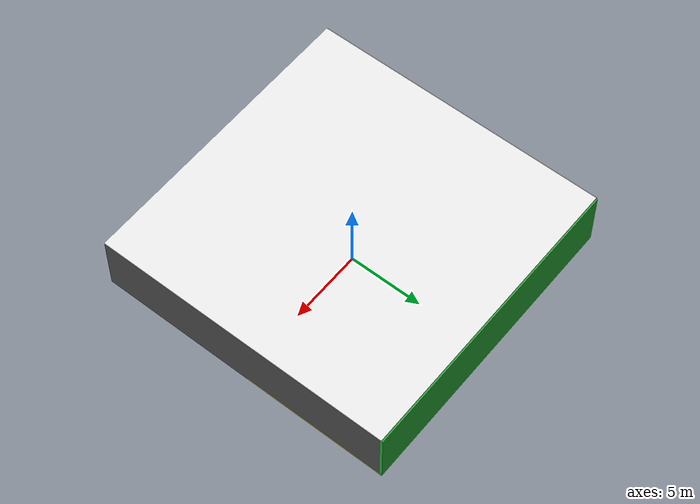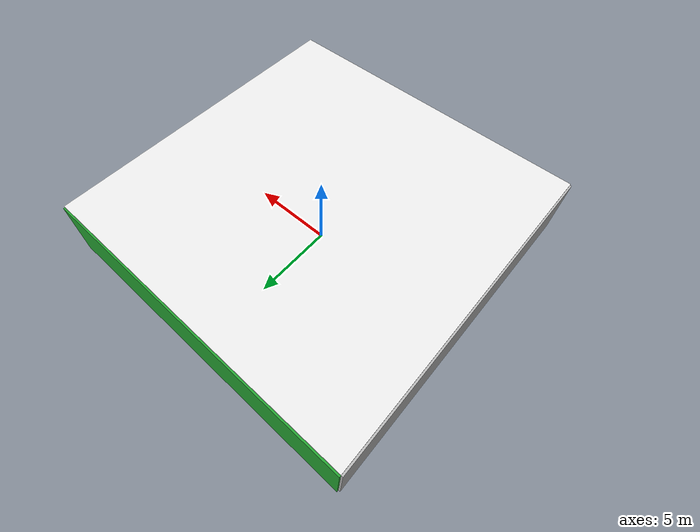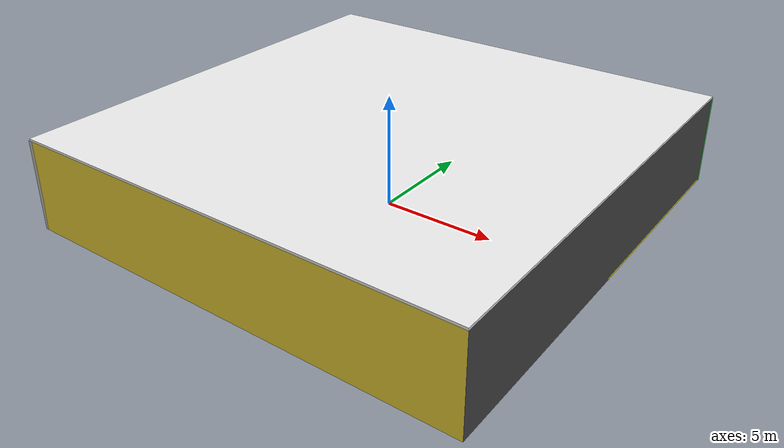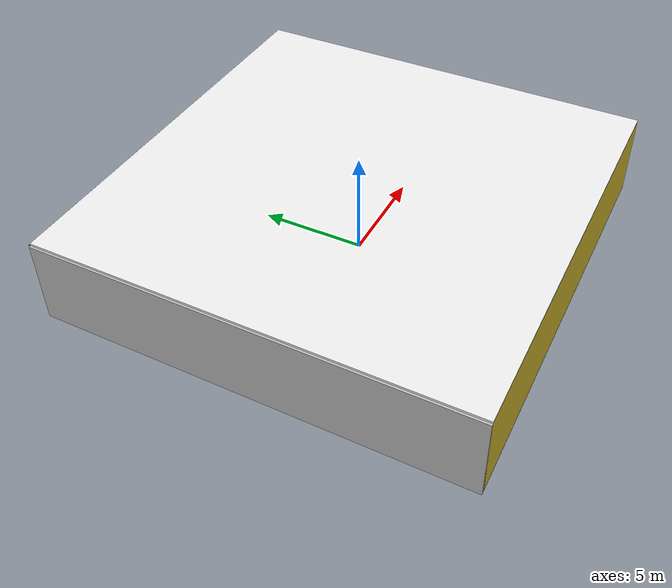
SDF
<sdf version="1.4">
 <world name="default">
  <physics type="ode">
   <max_step_size>0.001</max_step_size>
   <real_time_factor>1</real_time_factor>
   <real_time_update_rate>1000</real_time_update_rate>
   <gravity>0 0 -9.8</gravity>
  </physics>
  <scene><ambient>0.4 0.4 0.4 1</ambient><background>0.7 0.7 0.7 1</background><shadows>1</shadows></scene>
  <model name="Surrounding">
   <static>1</static>
   <link name="Ceiling">
    <collision name="Ceiling_Collision"><geometry><box><size>20 20 0.1</size></box></geometry></collision>
    <visual name="Ceiling_Visual">
     <geometry><box><size>20 20 0.1</size></box></geometry>
     <material>
      <script><uri>file://media/materials/scripts/gazebo.material</uri><name>Gazebo/White</name></script>
     </material>
    </visual>
    <pose>0 0 4.05 0 0 0</pose>
   </link>
   <link name="Wall_South">
    <collision name="Wall_South_Collision">
     <geometry><box><size>20 0 4</size></box></geometry>
     <pose>0 0 2 0 -0 0</pose>
    </collision>
    <visual name="Wall_South_Visual">
     <pose>0 0 2 0 -0 0</pose>
     <geometry><box><size>20 0 4</size></box></geometry>
     <material>
      <script><uri>file://media/materials/scripts/gazebo.material</uri><name>Gazebo/ZincYellow</name></script>
     </material>
    </visual>
    <velocity_decay><linear>0</linear><angular>0</angular></velocity_decay>
    <pose>0 -10 0 0 -0 0</pose>
   </link>
   <link name="Wall_East">
    <collision name="Wall_21_Collision">
     <geometry><box><size>20 0 4</size></box></geometry>
     <pose>0 0 2 0 -0 0</pose>
    </collision>
    <visual name="Wall_21_Visual">
     <pose>0 0 2 0 -0 0</pose>
     <geometry><box><size>20 0 4</size></box></geometry>
     <material>
      <script><uri>file://media/materials/scripts/gazebo.material</uri><name>Gazebo/DarkGrey</name></script>
     </material>
    </visual>
    <velocity_decay><linear>0</linear><angular>0</angular></velocity_decay>
    <pose>10 0 0 0 -0 1.5708</pose>
   </link>
   <link name="Wall_North">
    <collision name="Wall_22_Collision">
     <geometry><box><size>20 0.2 4</size></box></geometry>
     <pose>0 0 2 0 -0 0</pose>
    </collision>
    <visual name="Wall_22_Visual">
     <pose>0 0 2 0 -0 0</pose>
     <geometry><box><size>20 0.2 4</size></box></geometry>
     <material>
      <script><uri>file://media/materials/scripts/gazebo.material</uri><name>Gazebo/GreenGlow</name></script>
     </material>
    </visual>
    <velocity_decay><linear>0</linear><angular>0</angular></velocity_decay>
    <pose>0 10 0 0 -0 0</pose>
   </link>
   <link name="Wall_West">
    <collision name="Wall_23_Collision">
     <geometry><box><size>20 0.2 4</size></box></geometry>
     <pose>0 0 2 0 -0 0</pose>
    </collision>
    <visual name="Wall_23_Visual">
     <pose>0 0 2 0 -0 0</pose>
     <geometry><box><size>20 0.2 4</size></box></geometry>
     <material>
      <script><uri>file://media/materials/scripts/gazebo.material</uri><name>Gazebo/CloudySky</name></script>
     </material>
    </visual>
    <velocity_decay><linear>0</linear><angular>0</angular></velocity_decay>
    <pose>-10 0 0 0 0 -1.5708</pose>
   </link>
   <link name="Ground_link">
    <collision name="collision">
     <pose>0 0 .05 0 -0 0</pose>
     <geometry><box><size>20 20 0.1</size></box></geometry>
    </collision>
    <visual name="visual">
     <pose>0 0 .05 0 -0 0</pose>
     <geometry><box><size>20 20 0.1</size></box></geometry>
     <material>
      <script><uri>file://media/materials/scripts/gazebo.material</uri><name>Gazebo/Yellow</name></script>
     </material>
    </visual>
   </link>
   <static>1</static>
  </model>
  <spherical_coordinates>
   <surface_model>EARTH_WGS84</surface_model>
   <latitude_deg>0</latitude_deg>
   <longitude_deg>0</longitude_deg>
   <elevation>0</elevation>
   <heading_deg>0</heading_deg>
  </spherical_coordinates>
  <light name="lightball_0" type="diffuse">
   <diffuse>0.8 0.8 0.8 1</diffuse>
   <specular>0.2 0.2 0.2 1</specular>
   <attenuation>
    <range>100</range>
    <constant>0.7</constant>
    <linear>0.01</linear>
    <quadratic>0.001</quadratic>
   </attenuation>
   <direction>-0.5 0.1 -0.9</direction>
   <pose>9.52981854731 -5.75837563828 1.13018930625 0 0 0</pose>
  </light>
  <light name="lightball_1" type="diffuse">
   <diffuse>0.8 0.8 0.8 1</diffuse>
   <specular>0.2 0.2 0.2 1</specular>
   <attenuation>
    <range>100</range>
    <constant>0.7</constant>
    <linear>0.01</linear>
    <quadratic>0.001</quadratic>
   </attenuation>
   <direction>-0.5 0.1 -0.9</direction>
   <pose>-9.96152127375 3.25947904703 2.37253197285 0 0 0</pose>
  </light>
  <light name="lightball_2" type="diffuse">
   <diffuse>0.8 0.8 0.8 1</diffuse>
   <specular>0.2 0.2 0.2 1</specular>
   <attenuation>
    <range>100</range>
    <constant>0.7</constant>
    <linear>0.01</linear>
    <quadratic>0.001</quadratic>
   </attenuation>
   <direction>-0.5 0.1 -0.9</direction>
   <pose>8.9976744365 7.75398992903 1.02743672147 0 0 0</pose>
  </light>
  <light name="lightball_3" type="diffuse">
   <diffuse>0.8 0.8 0.8 1</diffuse>
   <specular>0.2 0.2 0.2 1</specular>
   <attenuation>
    <range>100</range>
    <constant>0.7</constant>
    <linear>0.01</linear>
    <quadratic>0.001</quadratic>
   </attenuation>
   <direction>-0.5 0.1 -0.9</direction>
   <pose>-2.93430922613 -3.53034828917 1.52889214297 0 0 0</pose>
  </light>
  <light name="lightball_4" type="diffuse">
   <diffuse>0.8 0.8 0.8 1</diffuse>
   <specular>0.2 0.2 0.2 1</specular>
   <attenuation>
    <range>100</range>
    <constant>0.7</constant>
    <linear>0.01</linear>
    <quadratic>0.001</quadratic>
   </attenuation>
   <direction>-0.5 0.1 -0.9</direction>
   <pose>1.46629031615 -3.48247386093 3.42778075236 0 0 0</pose>
  </light>
  <light name="lightball_5" type="diffuse">
   <diffuse>0.8 0.8 0.8 1</diffuse>
   <specular>0.2 0.2 0.2 1</specular>
   <attenuation>
    <range>100</range>
    <constant>0.7</constant>
    <linear>0.01</linear>
    <quadratic>0.001</quadratic>
   </attenuation>
   <direction>-0.5 0.1 -0.9</direction>
   <pose>4.14481612038 7.82238780641 3.23480519334 0 0 0</pose>
  </light>
  <light name="lightball_6" type="diffuse">
   <diffuse>0.8 0.8 0.8 1</diffuse>
   <specular>0.2 0.2 0.2 1</specular>
   <attenuation>
    <range>100</range>
    <constant>0.7</constant>
    <linear>0.01</linear>
    <quadratic>0.001</quadratic>
   </attenuation>
   <direction>-0.5 0.1 -0.9</direction>
   <pose>4.085059287 5.6835938378 2.01347076184 0 0 0</pose>
  </light>
  <light name="lightball_7" type="diffuse">
   <diffuse>0.8 0.8 0.8 1</diffuse>
   <specular>0.2 0.2 0.2 1</specular>
   <attenuation>
    <range>100</range>
    <constant>0.7</constant>
    <linear>0.01</linear>
    <quadratic>0.001</quadratic>
   </attenuation>
   <direction>-0.5 0.1 -0.9</direction>
   <pose>-0.686984574767 7.90060560203 1.94079659734 0 0 0</pose>
  </light>
  <include>
   <uri>model://textured_shapes</uri>
   <pose>-4.77676248658 -3.94019468905 0 0 0 0.233663376127</pose>
  </include>
  <include>
   <uri>model://textured_shapes</uri>
   <pose>-0.517869031396 0.551916191376 0 0 0 0.62204619764</pose>
  </include>
  <include>
   <uri>model://textured_shapes</uri>
   <pose>-2.56391068873 4.74212442178 0 0 0 1.9496116501</pose>
  </include>
  <include>
   <uri>model://robocup_3Dsim_goal</uri>
   <pose>3.48889273551 -7.44594067636 0 0 0 2.25404024781</pose>
  </include>
  <include>
   <uri>model://textured_shapes</uri>
   <pose>4.31722837262 8.05333709812 0 0 0 0.471146885136</pose>
  </include>
 </world>
</sdf>

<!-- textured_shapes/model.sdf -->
<sdf version="1.6">
  <model name="textured_shapes">
    <pose>0 0 0.5 0 0 0</pose>
    <link name="box">
      <pose>0 -1.5 0 0 0 0</pose>
      <collision name="collision">
        <geometry>
          <box>
            <size>1 1 1</size>
          </box>
        </geometry>
      </collision>
      <visual name="visual">
        <geometry>
          <box>
            <size>1 1 1</size>
          </box>
        </geometry>
        <material>
          <script>
            <uri>model://../model_source/models/textured_shapes/materials/scripts</uri>
            <uri>model://../model_source/models/textured_shapes/materials/textures</uri>
            <name>TexturedShape/Squares</name>
          </script>
        </material>
      </visual>
    </link>
    <link name="sphere">
      <collision name="collision">
        <geometry>
          <sphere>
            <radius>0.5</radius>
          </sphere>
        </geometry>
      </collision>
      <visual name="visual">
        <geometry>
          <sphere>
            <radius>0.5</radius>
          </sphere>
        </geometry>
        <material>
          <script>
            <uri>model://../model_source/models/textured_shapes/materials/scripts</uri>
            <uri>model://../model_source/models/textured_shapes/materials/textures</uri>
            <name>TexturedShape/Squares</name>
          </script>
        </material>
      </visual>
    </link>
    <link name="cylinder">
      <pose>0 1.5 0 0 0 0</pose>
      <collision name="collision">
        <geometry>
          <cylinder>
            <radius>0.5</radius>
            <length>1</length>
          </cylinder>
        </geometry>
      </collision>
      <visual name="visual">
        <geometry>
          <cylinder>
            <radius>0.5</radius>
            <length>1</length>
          </cylinder>
        </geometry>
        <material>
          <script>
            <uri>model://../model_source/models/textured_shapes/materials/scripts</uri>
            <uri>model://../model_source/models/textured_shapes/materials/textures</uri>
            <name>TexturedShape/Squares</name>
          </script>
        </material>
      </visual>
    </link>
  </model>
</sdf>

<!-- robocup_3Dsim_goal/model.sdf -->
<sdf version="1.5">
  <model name="robocup_3d_goal">
    <static>true</static>
    <link name="left_post">
      <pose>0 1.05 0.45 0 0 0</pose>
      <collision name="collision">
        <geometry>
          <cylinder>
            <radius>0.05</radius>
            <length>0.9</length>
          </cylinder>
        </geometry>
      </collision>
      <visual name="visual">
        <geometry>
          <cylinder>
            <radius>0.05</radius>
            <length>0.9</length>
          </cylinder>
        </geometry>
        <material>
          <script>
            <uri>file://media/materials/scripts/gazebo.material</uri>
            <name>Gazebo/ZincYellow</name>
          </script>
        </material>
      </visual>
    </link>
    <link name="left_support_horiz_lower">
      <pose>0.30 1.05 0.01 0 0 0</pose>
      <collision name="collision">
        <geometry>
          <box>
            <size>0.50 0.02 0.02</size>
          </box>
        </geometry>
      </collision>
      <visual name="visual">
        <geometry>
          <box>
            <size>0.50 0.02 0.02</size>
          </box>
        </geometry>
        <material>
          <script>
            <uri>file://media/materials/scripts/gazebo.material</uri>
            <name>Gazebo/White</name>
          </script>
        </material>
      </visual>
    </link>
    <link name="left_support_horiz_upper">
      <pose>0.30 1.05 0.79 0 0 0</pose>
      <collision name="collision">
        <geometry>
          <box>
            <size>0.50 0.02 0.02</size>
          </box>
        </geometry>
      </collision>
      <visual name="visual">
        <geometry>
          <box>
            <size>0.50 0.02 0.02</size>
          </box>
        </geometry>
        <material>
          <script>
            <uri>file://media/materials/scripts/gazebo.material</uri>
            <name>Gazebo/White</name>
          </script>
        </material>
      </visual>
    </link>
    <link name="left_support_vertical">
      <pose>0.56 1.05 0.4 0 1.5708 0</pose>
      <collision name="collision">
        <geometry>
          <box>
            <size>0.80 0.02 0.02</size>
          </box>
        </geometry>
      </collision>
      <visual name="visual">
        <geometry>
          <box>
            <size>0.80 0.02 0.02</size>
          </box>
        </geometry>
        <material>
          <script>
            <uri>file://media/materials/scripts/gazebo.material</uri>
            <name>Gazebo/White</name>
          </script>
        </material>
      </visual>
    </link>
    <link name="right_support_horiz_lower">
      <pose>0.30 -1.05 0.01 0 0 0</pose>
      <collision name="collision">
        <geometry>
          <box>
            <size>0.50 0.02 0.02</size>
          </box>
        </geometry>
      </collision>
      <visual name="visual">
        <geometry>
          <box>
            <size>0.50 0.02 0.02</size>
          </box>
        </geometry>
        <material>
          <script>
            <uri>file://media/materials/scripts/gazebo.material</uri>
            <name>Gazebo/White</name>
          </script>
        </material>
      </visual>
    </link>
    <link name="right_support_horiz_upper">
      <pose>0.30 -1.05 0.79 0 0 0</pose>
      <collision name="collision">
        <geometry>
          <box>
            <size>0.50 0.02 0.02</size>
          </box>
        </geometry>
      </collision>
      <visual name="visual">
        <geometry>
          <box>
            <size>0.50 0.02 0.02</size>
          </box>
        </geometry>
        <material>
          <script>
            <uri>file://media/materials/scripts/gazebo.material</uri>
            <name>Gazebo/White</name>
          </script>
        </material>
      </visual>
    </link>
    <link name="right_support_vertical">
      <pose>0.56 -1.05 0.4 0 1.5708 0</pose>
      <collision name="collision">
        <geometry>
          <box>
            <size>0.80 0.02 0.02</size>
          </box>
        </geometry>
      </collision>
      <visual name="visual">
        <geometry>
          <box>
            <size>0.80 0.02 0.02</size>
          </box>
        </geometry>
        <material>
          <script>
            <uri>file://media/materials/scripts/gazebo.material</uri>
            <name>Gazebo/White</name>
          </script>
        </material>
      </visual>
    </link>
    <link name="center_support_horiz_lower">
      <pose>0.56 0 0.01 0 1.5708 0</pose>
      <collision name="collision">
        <geometry>
          <box>
            <size>0.02 2.08 0.02</size>
          </box>
        </geometry>
      </collision>
      <visual name="visual">
        <geometry>
          <box>
            <size>0.02 2.08 0.02</size>
          </box>
        </geometry>
        <material>
          <script>
            <uri>file://media/materials/scripts/gazebo.material</uri>
            <name>Gazebo/White</name>
          </script>
        </material>
      </visual>
    </link>
    <link name="center_support_horiz_upper">
      <pose>0.56 0 0.79 0 1.5708 0</pose>
      <collision name="collision">
        <geometry>
          <box>
            <size>0.02 2.08 0.02</size>
          </box>
        </geometry>
      </collision>
      <visual name="visual">
        <geometry>
          <box>
            <size>0.02 2.08 0.02</size>
          </box>
        </geometry>
        <material>
          <script>
            <uri>file://media/materials/scripts/gazebo.material</uri>
            <name>Gazebo/White</name>
          </script>
        </material>
      </visual>
    </link>
    <link name="right_post">
      <pose>0 -1.05 0.45 0 0 0</pose>
      <collision name="collision">
        <geometry>
          <cylinder>
            <radius>0.05</radius>
            <length>0.9</length>
          </cylinder>
        </geometry>
      </collision>
      <visual name="visual">
        <geometry>
          <cylinder>
            <radius>0.05</radius>
            <length>0.9</length>
          </cylinder>
        </geometry>
        <material>
          <script>
            <uri>file://media/materials/scripts/gazebo.material</uri>
            <name>Gazebo/ZincYellow</name>
          </script>
        </material>
      </visual>
    </link>
    <link name="crossbar">
      <pose>0 0 0.85 1.57 1.57 0</pose>
      <collision name="collision">
        <geometry>
          <cylinder>
            <radius>0.05</radius>
            <length>2.0</length>
          </cylinder>
        </geometry>
      </collision>
      <visual name="visual">
        <geometry>
          <cylinder>
            <radius>0.05</radius>
            <length>2.0</length>
          </cylinder>
        </geometry>
        <material>
          <script>
            <uri>file://media/materials/scripts/gazebo.material</uri>
            <name>Gazebo/ZincYellow</name>
          </script>
        </material>
      </visual>
    </link>
    <link name="center_net">
      <pose>0.56 0 0.40 0 0 0</pose>
      <collision name="collision">
        <geometry>
          <box>
            <size>0.01 2.1 0.80</size>
          </box>
        </geometry>
      </collision>
      <visual name="visual">
        <geometry>
          <box>
            <size>0.01 2.1 0.80</size>
          </box>
        </geometry>
        <material>
          <script>
            <uri>model://../model_source/models/robocup09_spl_field/materials/scripts/</uri>
            <uri>model://../model_source/models/robocup09_spl_field/materials/textures/</uri>
            <name>RoboCup/Net</name>
          </script>
        </material>
      </visual>
    </link>
    <link name="left_net">
      <pose>0.30 1.05 0.40 0 0 0</pose>
      <collision name="collision">
        <geometry>
          <box>
            <size>0.50 0.01 0.76</size>
          </box>
        </geometry>
      </collision>
      <visual name="visual">
        <geometry>
          <box>
            <size>0.50 0.01 0.76</size>
          </box>
        </geometry>
        <material>
          <script>
            <uri>model://../model_source/models/robocup09_spl_field/materials/scripts/</uri>
            <uri>model://../model_source/models/robocup09_spl_field/materials/textures/</uri>
            <name>RoboCup/Net</name>
          </script>
        </material>
      </visual>
    </link>
    <link name="right_net">
      <pose>0.30 -1.05 0.40 0 0 0</pose>
      <collision name="collision">
        <geometry>
          <box>
            <size>0.50 0.01 0.76</size>
          </box>
        </geometry>
      </collision>
      <visual name="visual">
        <geometry>
          <box>
            <size>0.50 0.01 0.76</size>
          </box>
        </geometry>
        <material>
          <script>
            <uri>model://../model_source/models/robocup09_spl_field/materials/scripts/</uri>
            <uri>model://../model_source/models/robocup09_spl_field/materials/textures/</uri>
            <name>RoboCup/Net</name>
          </script>
        </material>
      </visual>
    </link>
  </model>
</sdf>
